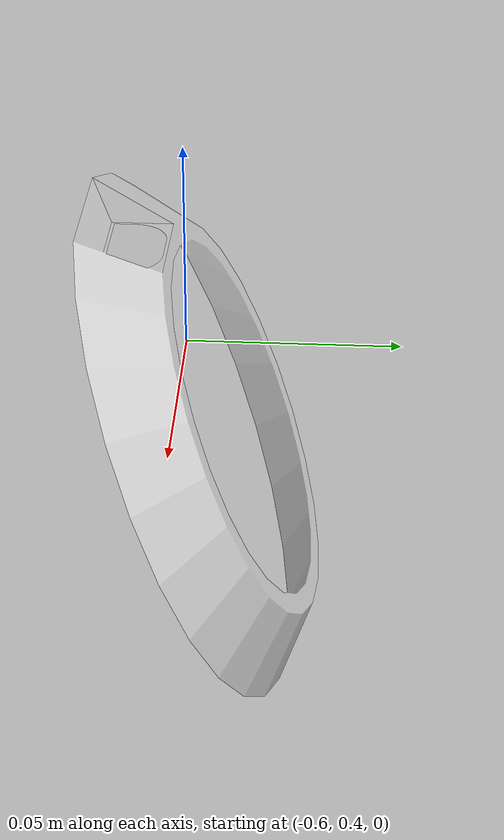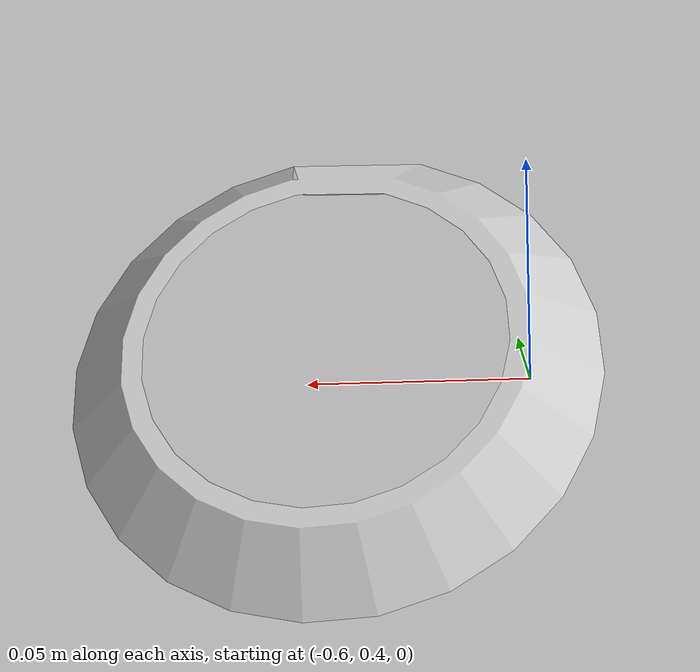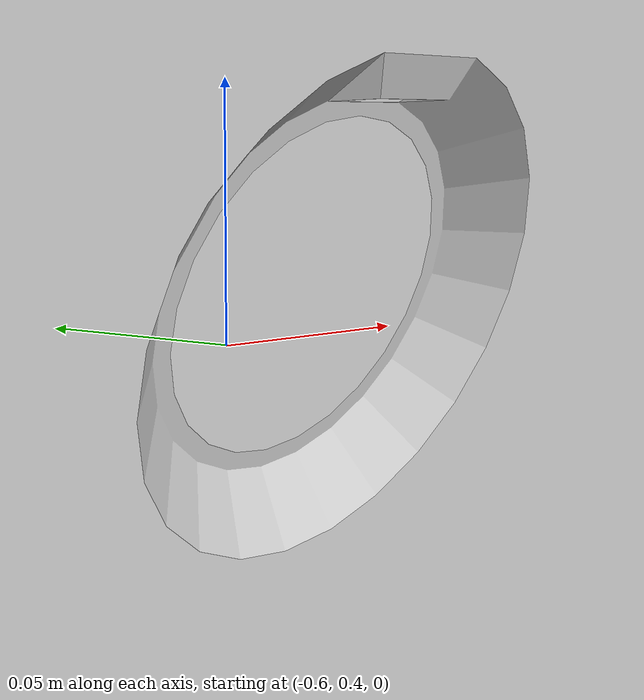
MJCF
<mujoco model="original-45">
  <default>
    <default class="visual">
      <geom group="2" type="mesh" contype="0" conaffinity="0"/>
    </default>
    <default class="collision">
      <geom group="3" type="mesh"/>
    </default>
  </default>
  <asset>
    <material name="material_0_0" specular="0.06666666666666667" shininess="0.03" rgba="0.8 0.8 0.8 1"/>
    <mesh file="original-45.obj"/>
  </asset>
  <worldbody>
    <body name="original-45">
      <geom material="material_0_0" mesh="original-45" class="visual"/>
      <geom mesh="original-45" class="collision"/>
    </body>
  </worldbody>
</mujoco>
